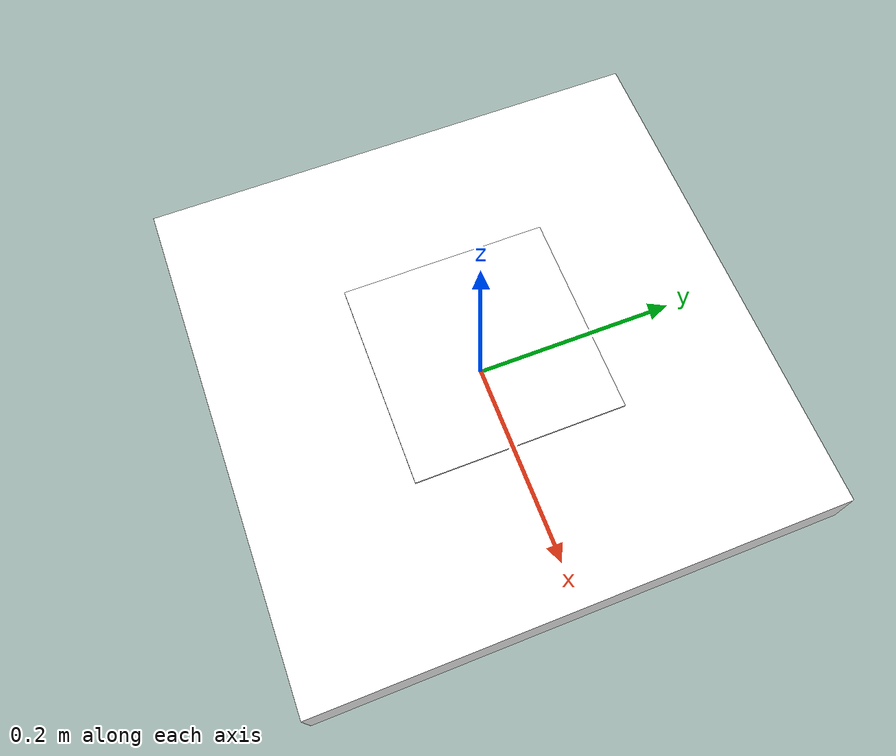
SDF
<?xml version='1.0'?>
<sdf version='1.9'>
  <model name='target_aruco'>
    <!-- Main link (white platform) -->
    <link name='base_link'>
      <inertial>
        <mass>1.0</mass>
        <inertia>
          <ixx>0.1</ixx>
          <ixy>0</ixy>
          <ixz>0</ixz>
          <iyy>0.1</iyy>
          <iyz>0</iyz>
          <izz>0.1</izz>
        </inertia>
      </inertial>

      <visual name="base_visual">
        <pose>0 0 0.025 0 0 0</pose>
        <geometry>
          <box>
            <size>0.5 0.5 0.05</size>
          </box>
        </geometry>
        <material>
          <ambient>1 1 1 1</ambient>
          <diffuse>1 1 1 1</diffuse>
          <specular>1 1 1 1</specular>
        </material>
      </visual>

      <!-- ArUco marker visual -->
      <visual name='aruco_visual'>
        <pose>0 0 0.055 0 0 0</pose>
        <geometry>
          <box>
            <size>0.2 0.2 0.002</size>
          </box>
        </geometry>
        <material>
          <ambient>1 1 1 1</ambient>
          <diffuse>1 1 1 1</diffuse>
          <specular>0.5 0.5 0.5 1</specular>
          <pbr>
            <metal>
              <albedo_map>materials/textures/aruco_marker.png</albedo_map>
            </metal>
          </pbr>
        </material>
      </visual>

      <collision name='collision'>
        <pose>0 0 0.025 0 0 0</pose>
        <geometry>
          <box>
            <size>0.5 0.5 0.05</size>
          </box>
        </geometry>
      </collision>
    </link>

    <!-- Velocity control plugin -->
    <plugin
      filename="gz-sim-velocity-control-system"
      name="gz::sim::systems::VelocityControl">
      <initial_linear>0 0 0</initial_linear>
      <initial_angular>0 0 0</initial_angular>
      <lin_vel_min>-1 -1 -1</lin_vel_min>
      <lin_vel_max>1 1 1</lin_vel_max>
      <ang_vel_min>-1 -1 -1</ang_vel_min>
      <ang_vel_max>1 1 1</ang_vel_max>
      <link_name>base_link</link_name>  <!-- Explicitly set the link -->
    </plugin>
  </model>
</sdf>
